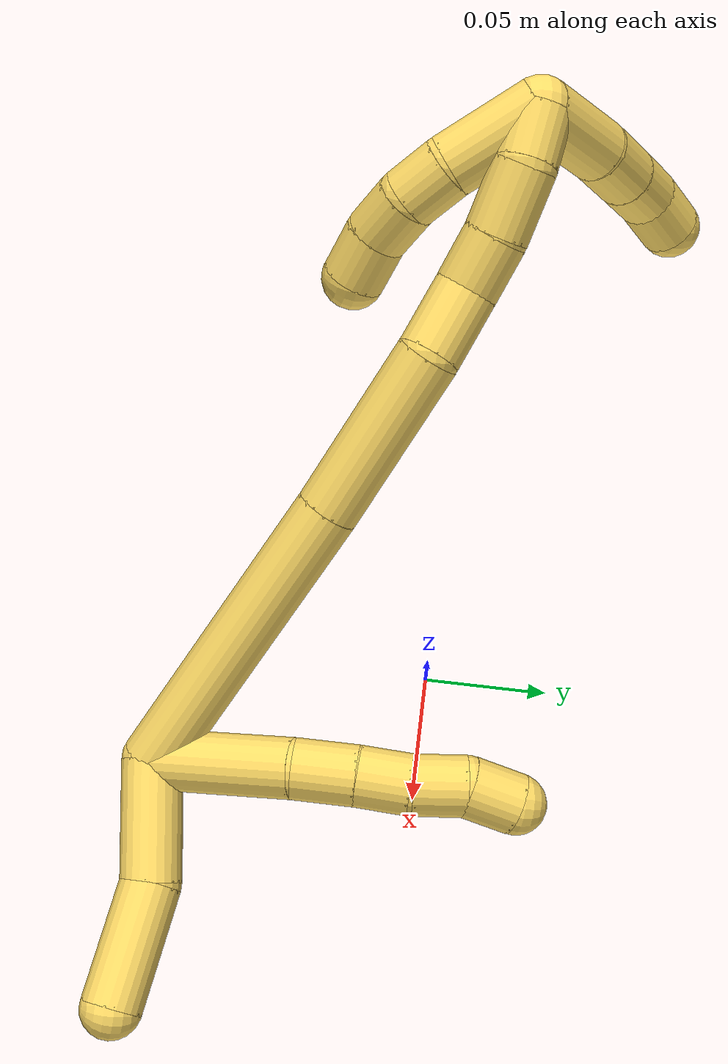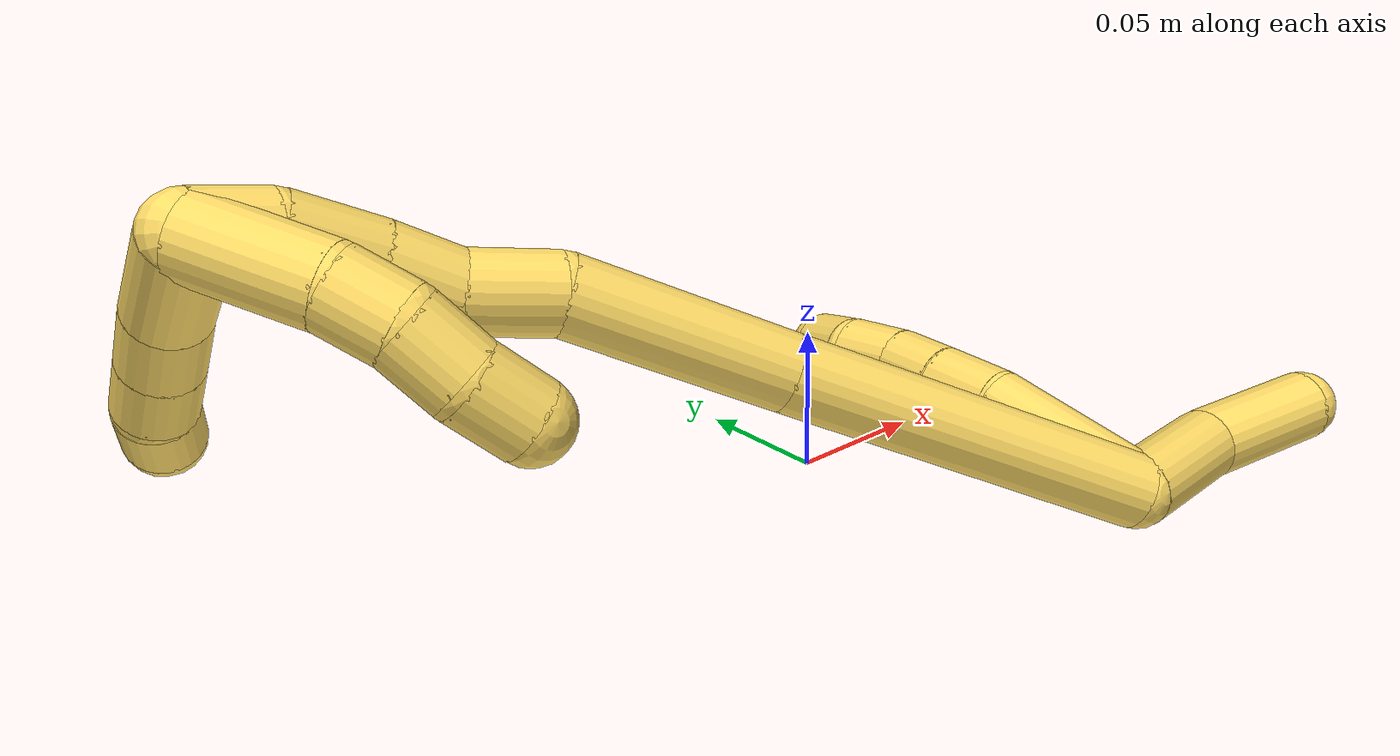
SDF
<sdf version="1.7">
 <world name="default">
  <model name="5">
   <static>0</static>
   <link name="5">
    <collision name="collision-cylinder-e_1_2_8">
     <pose>-0.002439 -0.013313 0.026356 0.467722 -0.082414 -0.019643</pose>
     <geometry><cylinder><radius>0.0125</radius><length>0.059257</length></cylinder></geometry>
     <surface>
      <friction><ode><mu>1.16</mu><mu2>1.16</mu2><slip1>0</slip1><slip2>0</slip2></ode></friction>
      <contact><ode><kp>1e+06</kp><kd>1</kd><max_vel>0</max_vel><min_depth>0.001</min_depth></ode></contact>
     </surface>
    </collision>
    <visual name="visual-cylinder-e_1_2_8">
     <pose>-0.002439 -0.013313 0.026356 0.467722 -0.082414 -0.019643</pose>
     <geometry><cylinder><radius>0.0125</radius><length>0.059257</length></cylinder></geometry>
     <material><ambient>1 0.858824 0.4 1</ambient></material>
    </visual>
    <collision name="collision-cylinder-e_2_8_9">
     <pose>-0.00509 -0.030518 0.064911 0.308893 -0.016516 -0.002571</pose>
     <geometry><cylinder><radius>0.0125</radius><length>0.025612</length></cylinder></geometry>
     <surface>
      <friction><ode><mu>1.16</mu><mu2>1.16</mu2><slip1>0</slip1><slip2>0</slip2></ode></friction>
      <contact><ode><kp>1e+06</kp><kd>1</kd><max_vel>0</max_vel><min_depth>0.001</min_depth></ode></contact>
     </surface>
    </collision>
    <visual name="visual-cylinder-e_2_8_9">
     <pose>-0.00509 -0.030518 0.064911 0.308893 -0.016516 -0.002571</pose>
     <geometry><cylinder><radius>0.0125</radius><length>0.025612</length></cylinder></geometry>
     <material><ambient>1 0.858824 0.4 1</ambient></material>
    </visual>
    <collision name="collision-cylinder-e_3_9_10">
     <pose>-0.004912 -0.037401 0.087483 0.280708 0.036031 0.005091</pose>
     <geometry><cylinder><radius>0.0125</radius><length>0.021606</length></cylinder></geometry>
     <surface>
      <friction><ode><mu>1.16</mu><mu2>1.16</mu2><slip1>0</slip1><slip2>0</slip2></ode></friction>
      <contact><ode><kp>1e+06</kp><kd>1</kd><max_vel>0</max_vel><min_depth>0.001</min_depth></ode></contact>
     </surface>
    </collision>
    <visual name="visual-cylinder-e_3_9_10">
     <pose>-0.004912 -0.037401 0.087483 0.280708 0.036031 0.005091</pose>
     <geometry><cylinder><radius>0.0125</radius><length>0.021606</length></cylinder></geometry>
     <material><ambient>1 0.858824 0.4 1</ambient></material>
    </visual>
    <collision name="collision-cylinder-e_4_10_11">
     <pose>-0.005549 -0.042527 0.108644 0.195359 -0.093092 -0.009129</pose>
     <geometry><cylinder><radius>0.0125</radius><length>0.022089</length></cylinder></geometry>
     <surface>
      <friction><ode><mu>1.16</mu><mu2>1.16</mu2><slip1>0</slip1><slip2>0</slip2></ode></friction>
      <contact><ode><kp>1e+06</kp><kd>1</kd><max_vel>0</max_vel><min_depth>0.001</min_depth></ode></contact>
     </surface>
    </collision>
    <visual name="visual-cylinder-e_4_10_11">
     <pose>-0.005549 -0.042527 0.108644 0.195359 -0.093092 -0.009129</pose>
     <geometry><cylinder><radius>0.0125</radius><length>0.022089</length></cylinder></geometry>
     <material><ambient>1 0.858824 0.4 1</ambient></material>
    </visual>
    <collision name="collision-cylinder-e_5_11_6">
     <pose>-0.004049 -0.045564 0.129808 0.086724 0.238019 0.010376</pose>
     <geometry><cylinder><radius>0.0125</radius><length>0.021436</length></cylinder></geometry>
     <surface>
      <friction><ode><mu>1.16</mu><mu2>1.16</mu2><slip1>0</slip1><slip2>0</slip2></ode></friction>
      <contact><ode><kp>1e+06</kp><kd>1</kd><max_vel>0</max_vel><min_depth>0.001</min_depth></ode></contact>
     </surface>
    </collision>
    <visual name="visual-cylinder-e_5_11_6">
     <pose>-0.004049 -0.045564 0.129808 0.086724 0.238019 0.010376</pose>
     <geometry><cylinder><radius>0.0125</radius><length>0.021436</length></cylinder></geometry>
     <material><ambient>1 0.858824 0.4 1</ambient></material>
    </visual>
    <collision name="collision-cylinder-e_1_2_12">
     <pose>0.024087 -0.005313 0.002054 1.20195 1.33857 0.993901</pose>
     <geometry><cylinder><radius>0.0125</radius><length>0.049504</length></cylinder></geometry>
     <surface>
      <friction><ode><mu>1.16</mu><mu2>1.16</mu2><slip1>0</slip1><slip2>0</slip2></ode></friction>
      <contact><ode><kp>1e+06</kp><kd>1</kd><max_vel>0</max_vel><min_depth>0.001</min_depth></ode></contact>
     </surface>
    </collision>
    <visual name="visual-cylinder-e_1_2_12">
     <pose>0.024087 -0.005313 0.002054 1.20195 1.33857 0.993901</pose>
     <geometry><cylinder><radius>0.0125</radius><length>0.049504</length></cylinder></geometry>
     <material><ambient>1 0.858824 0.4 1</ambient></material>
    </visual>
    <collision name="collision-cylinder-e_2_12_5">
     <pose>0.072265 -0.01588 -0.001328 2.37325 1.26671 2.13504</pose>
     <geometry><cylinder><radius>0.0125</radius><length>0.050496</length></cylinder></geometry>
     <surface>
      <friction><ode><mu>1.16</mu><mu2>1.16</mu2><slip1>0</slip1><slip2>0</slip2></ode></friction>
      <contact><ode><kp>1e+06</kp><kd>1</kd><max_vel>0</max_vel><min_depth>0.001</min_depth></ode></contact>
     </surface>
    </collision>
    <visual name="visual-cylinder-e_2_12_5">
     <pose>0.072265 -0.01588 -0.001328 2.37325 1.26671 2.13504</pose>
     <geometry><cylinder><radius>0.0125</radius><length>0.050496</length></cylinder></geometry>
     <material><ambient>1 0.858824 0.4 1</ambient></material>
    </visual>
    <collision name="collision-cylinder-e_1_2_13">
     <pose>-0.054091 -0.021966 0.024865 0.723559 -1.0206 -0.41749</pose>
     <geometry><cylinder><radius>0.0125</radius><length>0.12691</length></cylinder></geometry>
     <surface>
      <friction><ode><mu>1.16</mu><mu2>1.16</mu2><slip1>0</slip1><slip2>0</slip2></ode></friction>
      <contact><ode><kp>1e+06</kp><kd>1</kd><max_vel>0</max_vel><min_depth>0.001</min_depth></ode></contact>
     </surface>
    </collision>
    <visual name="visual-cylinder-e_1_2_13">
     <pose>-0.054091 -0.021966 0.024865 0.723559 -1.0206 -0.41749</pose>
     <geometry><cylinder><radius>0.0125</radius><length>0.12691</length></cylinder></geometry>
     <material><ambient>1 0.858824 0.4 1</ambient></material>
    </visual>
    <collision name="collision-cylinder-e_2_13_14">
     <pose>-0.139214 -0.0565 0.062649 0.771685 -1.04461 -0.459391</pose>
     <geometry><cylinder><radius>0.0125</radius><length>0.071775</length></cylinder></geometry>
     <surface>
      <friction><ode><mu>1.16</mu><mu2>1.16</mu2><slip1>0</slip1><slip2>0</slip2></ode></friction>
      <contact><ode><kp>1e+06</kp><kd>1</kd><max_vel>0</max_vel><min_depth>0.001</min_depth></ode></contact>
     </surface>
    </collision>
    <visual name="visual-cylinder-e_2_13_14">
     <pose>-0.139214 -0.0565 0.062649 0.771685 -1.04461 -0.459391</pose>
     <geometry><cylinder><radius>0.0125</radius><length>0.071775</length></cylinder></geometry>
     <material><ambient>1 0.858824 0.4 1</ambient></material>
    </visual>
    <collision name="collision-cylinder-e_3_14_15">
     <pose>-0.183556 -0.069636 0.081095 0.102276 -1.17531 -0.068166</pose>
     <geometry><cylinder><radius>0.0125</radius><length>0.028845</length></cylinder></geometry>
     <surface>
      <friction><ode><mu>1.16</mu><mu2>1.16</mu2><slip1>0</slip1><slip2>0</slip2></ode></friction>
      <contact><ode><kp>1e+06</kp><kd>1</kd><max_vel>0</max_vel><min_depth>0.001</min_depth></ode></contact>
     </surface>
    </collision>
    <visual name="visual-cylinder-e_3_14_15">
     <pose>-0.183556 -0.069636 0.081095 0.102276 -1.17531 -0.068166</pose>
     <geometry><cylinder><radius>0.0125</radius><length>0.028845</length></cylinder></geometry>
     <material><ambient>1 0.858824 0.4 1</ambient></material>
    </visual>
    <collision name="collision-cylinder-e_4_15_16">
     <pose>-0.206996 -0.074392 0.089891 0.908056 -1.08771 -0.57392</pose>
     <geometry><cylinder><radius>0.0125</radius><length>0.022878</length></cylinder></geometry>
     <surface>
      <friction><ode><mu>1.16</mu><mu2>1.16</mu2><slip1>0</slip1><slip2>0</slip2></ode></friction>
      <contact><ode><kp>1e+06</kp><kd>1</kd><max_vel>0</max_vel><min_depth>0.001</min_depth></ode></contact>
     </surface>
    </collision>
    <visual name="visual-cylinder-e_4_15_16">
     <pose>-0.206996 -0.074392 0.089891 0.908056 -1.08771 -0.57392</pose>
     <geometry><cylinder><radius>0.0125</radius><length>0.022878</length></cylinder></geometry>
     <material><ambient>1 0.858824 0.4 1</ambient></material>
    </visual>
    <collision name="collision-cylinder-e_5_16_17">
     <pose>-0.230145 -0.082561 0.095805 0.984307 -1.21908 -0.716424</pose>
     <geometry><cylinder><radius>0.0125</radius><length>0.027737</length></cylinder></geometry>
     <surface>
      <friction><ode><mu>1.16</mu><mu2>1.16</mu2><slip1>0</slip1><slip2>0</slip2></ode></friction>
      <contact><ode><kp>1e+06</kp><kd>1</kd><max_vel>0</max_vel><min_depth>0.001</min_depth></ode></contact>
     </surface>
    </collision>
    <visual name="visual-cylinder-e_5_16_17">
     <pose>-0.230145 -0.082561 0.095805 0.984307 -1.21908 -0.716424</pose>
     <geometry><cylinder><radius>0.0125</radius><length>0.027737</length></cylinder></geometry>
     <material><ambient>1 0.858824 0.4 1</ambient></material>
    </visual>
    <collision name="collision-cylinder-e_6_17_1">
     <pose>-0.253955 -0.086311 0.100162 -0.132914 -1.41201 0.113369</pose>
     <geometry><cylinder><radius>0.0125</radius><length>0.021854</length></cylinder></geometry>
     <surface>
      <friction><ode><mu>1.16</mu><mu2>1.16</mu2><slip1>0</slip1><slip2>0</slip2></ode></friction>
      <contact><ode><kp>1e+06</kp><kd>1</kd><max_vel>0</max_vel><min_depth>0.001</min_depth></ode></contact>
     </surface>
    </collision>
    <visual name="visual-cylinder-e_6_17_1">
     <pose>-0.253955 -0.086311 0.100162 -0.132914 -1.41201 0.113369</pose>
     <geometry><cylinder><radius>0.0125</radius><length>0.021854</length></cylinder></geometry>
     <material><ambient>1 0.858824 0.4 1</ambient></material>
    </visual>
    <collision name="collision-cylinder-e_1_1_18">
     <pose>-0.261595 -0.076596 0.117334 -0.550354 0.171924 -0.048651</pose>
     <geometry><cylinder><radius>0.0125</radius><length>0.036819</length></cylinder></geometry>
     <surface>
      <friction><ode><mu>1.16</mu><mu2>1.16</mu2><slip1>0</slip1><slip2>0</slip2></ode></friction>
      <contact><ode><kp>1e+06</kp><kd>1</kd><max_vel>0</max_vel><min_depth>0.001</min_depth></ode></contact>
     </surface>
    </collision>
    <visual name="visual-cylinder-e_1_1_18">
     <pose>-0.261595 -0.076596 0.117334 -0.550354 0.171924 -0.048651</pose>
     <geometry><cylinder><radius>0.0125</radius><length>0.036819</length></cylinder></geometry>
     <material><ambient>1 0.858824 0.4 1</ambient></material>
    </visual>
    <collision name="collision-cylinder-e_2_18_19">
     <pose>-0.25641 -0.060092 0.141413 -0.683366 0.181153 -0.064578</pose>
     <geometry><cylinder><radius>0.0125</radius><length>0.0226</length></cylinder></geometry>
     <surface>
      <friction><ode><mu>1.16</mu><mu2>1.16</mu2><slip1>0</slip1><slip2>0</slip2></ode></friction>
      <contact><ode><kp>1e+06</kp><kd>1</kd><max_vel>0</max_vel><min_depth>0.001</min_depth></ode></contact>
     </surface>
    </collision>
    <visual name="visual-cylinder-e_2_18_19">
     <pose>-0.25641 -0.060092 0.141413 -0.683366 0.181153 -0.064578</pose>
     <geometry><cylinder><radius>0.0125</radius><length>0.0226</length></cylinder></geometry>
     <material><ambient>1 0.858824 0.4 1</ambient></material>
    </visual>
    <collision name="collision-cylinder-e_3_19_20">
     <pose>-0.252651 -0.046507 0.157661 -0.710757 0.169544 -0.063054</pose>
     <geometry><cylinder><radius>0.0125</radius><length>0.020424</length></cylinder></geometry>
     <surface>
      <friction><ode><mu>1.16</mu><mu2>1.16</mu2><slip1>0</slip1><slip2>0</slip2></ode></friction>
      <contact><ode><kp>1e+06</kp><kd>1</kd><max_vel>0</max_vel><min_depth>0.001</min_depth></ode></contact>
     </surface>
    </collision>
    <visual name="visual-cylinder-e_3_19_20">
     <pose>-0.252651 -0.046507 0.157661 -0.710757 0.169544 -0.063054</pose>
     <geometry><cylinder><radius>0.0125</radius><length>0.020424</length></cylinder></geometry>
     <material><ambient>1 0.858824 0.4 1</ambient></material>
    </visual>
    <collision name="collision-cylinder-e_4_20_4">
     <pose>-0.246876 -0.034911 0.173026 -0.576404 0.413682 -0.124258</pose>
     <geometry><cylinder><radius>0.0125</radius><length>0.020157</length></cylinder></geometry>
     <surface>
      <friction><ode><mu>1.16</mu><mu2>1.16</mu2><slip1>0</slip1><slip2>0</slip2></ode></friction>
      <contact><ode><kp>1e+06</kp><kd>1</kd><max_vel>0</max_vel><min_depth>0.001</min_depth></ode></contact>
     </surface>
    </collision>
    <visual name="visual-cylinder-e_4_20_4">
     <pose>-0.246876 -0.034911 0.173026 -0.576404 0.413682 -0.124258</pose>
     <geometry><cylinder><radius>0.0125</radius><length>0.020157</length></cylinder></geometry>
     <material><ambient>1 0.858824 0.4 1</ambient></material>
    </visual>
    <collision name="collision-cylinder-e_1_1_21">
     <pose>-0.252778 -0.079101 0.087702 -2.68389 0.648233 -1.92914</pose>
     <geometry><cylinder><radius>0.0125</radius><length>0.039638</length></cylinder></geometry>
     <surface>
      <friction><ode><mu>1.16</mu><mu2>1.16</mu2><slip1>0</slip1><slip2>0</slip2></ode></friction>
      <contact><ode><kp>1e+06</kp><kd>1</kd><max_vel>0</max_vel><min_depth>0.001</min_depth></ode></contact>
     </surface>
    </collision>
    <visual name="visual-cylinder-e_1_1_21">
     <pose>-0.252778 -0.079101 0.087702 -2.68389 0.648233 -1.92914</pose>
     <geometry><cylinder><radius>0.0125</radius><length>0.039638</length></cylinder></geometry>
     <material><ambient>1 0.858824 0.4 1</ambient></material>
    </visual>
    <collision name="collision-cylinder-e_2_21_22">
     <pose>-0.23452 -0.06703 0.067652 -2.42785 0.680307 -1.51873</pose>
     <geometry><cylinder><radius>0.0125</radius><length>0.020002</length></cylinder></geometry>
     <surface>
      <friction><ode><mu>1.16</mu><mu2>1.16</mu2><slip1>0</slip1><slip2>0</slip2></ode></friction>
      <contact><ode><kp>1e+06</kp><kd>1</kd><max_vel>0</max_vel><min_depth>0.001</min_depth></ode></contact>
     </surface>
    </collision>
    <visual name="visual-cylinder-e_2_21_22">
     <pose>-0.23452 -0.06703 0.067652 -2.42785 0.680307 -1.51873</pose>
     <geometry><cylinder><radius>0.0125</radius><length>0.020002</length></cylinder></geometry>
     <material><ambient>1 0.858824 0.4 1</ambient></material>
    </visual>
    <collision name="collision-cylinder-e_3_22_23">
     <pose>-0.221831 -0.055022 0.058161 -2.05218 0.686669 -1.06617</pose>
     <geometry><cylinder><radius>0.0125</radius><length>0.020186</length></cylinder></geometry>
     <surface>
      <friction><ode><mu>1.16</mu><mu2>1.16</mu2><slip1>0</slip1><slip2>0</slip2></ode></friction>
      <contact><ode><kp>1e+06</kp><kd>1</kd><max_vel>0</max_vel><min_depth>0.001</min_depth></ode></contact>
     </surface>
    </collision>
    <visual name="visual-cylinder-e_3_22_23">
     <pose>-0.221831 -0.055022 0.058161 -2.05218 0.686669 -1.06617</pose>
     <geometry><cylinder><radius>0.0125</radius><length>0.020186</length></cylinder></geometry>
     <material><ambient>1 0.858824 0.4 1</ambient></material>
    </visual>
    <collision name="collision-cylinder-e_4_23_3">
     <pose>-0.207485 -0.042339 0.052232 -1.95281 0.907358 -1.24986</pose>
     <geometry><cylinder><radius>0.0125</radius><length>0.020174</length></cylinder></geometry>
     <surface>
      <friction><ode><mu>1.16</mu><mu2>1.16</mu2><slip1>0</slip1><slip2>0</slip2></ode></friction>
      <contact><ode><kp>1e+06</kp><kd>1</kd><max_vel>0</max_vel><min_depth>0.001</min_depth></ode></contact>
     </surface>
    </collision>
    <visual name="visual-cylinder-e_4_23_3">
     <pose>-0.207485 -0.042339 0.052232 -1.95281 0.907358 -1.24986</pose>
     <geometry><cylinder><radius>0.0125</radius><length>0.020174</length></cylinder></geometry>
     <material><ambient>1 0.858824 0.4 1</ambient></material>
    </visual>
    <collision name="collision-sphere-3">
     <pose>-0.199538 -0.036575 0.049916 0 -0 0</pose>
     <geometry><sphere><radius>0.0125</radius></sphere></geometry>
     <surface>
      <friction><ode><mu>1.16</mu><mu2>1.16</mu2><slip1>0</slip1><slip2>0</slip2></ode></friction>
      <contact><ode><kp>1e+06</kp><kd>1</kd><max_vel>0</max_vel><min_depth>0.001</min_depth></ode></contact>
     </surface>
    </collision>
    <visual name="visual-sphere-3">
     <pose>-0.199538 -0.036575 0.049916 0 -0 0</pose>
     <geometry><sphere><radius>0.0125</radius></sphere></geometry>
     <material><ambient>1 0.858824 0.4 1</ambient></material>
    </visual>
    <collision name="collision-sphere-23">
     <pose>-0.215433 -0.048103 0.054547 0 -0 0</pose>
     <geometry><sphere><radius>0.0125</radius></sphere></geometry>
     <surface>
      <friction><ode><mu>1.16</mu><mu2>1.16</mu2><slip1>0</slip1><slip2>0</slip2></ode></friction>
      <contact><ode><kp>1e+06</kp><kd>1</kd><max_vel>0</max_vel><min_depth>0.001</min_depth></ode></contact>
     </surface>
    </collision>
    <visual name="visual-sphere-23">
     <pose>-0.215433 -0.048103 0.054547 0 -0 0</pose>
     <geometry><sphere><radius>0.0125</radius></sphere></geometry>
     <material><ambient>1 0.858824 0.4 1</ambient></material>
    </visual>
    <collision name="collision-sphere-22">
     <pose>-0.22823 -0.06194 0.061775 0 -0 0</pose>
     <geometry><sphere><radius>0.0125</radius></sphere></geometry>
     <surface>
      <friction><ode><mu>1.16</mu><mu2>1.16</mu2><slip1>0</slip1><slip2>0</slip2></ode></friction>
      <contact><ode><kp>1e+06</kp><kd>1</kd><max_vel>0</max_vel><min_depth>0.001</min_depth></ode></contact>
     </surface>
    </collision>
    <visual name="visual-sphere-22">
     <pose>-0.22823 -0.06194 0.061775 0 -0 0</pose>
     <geometry><sphere><radius>0.0125</radius></sphere></geometry>
     <material><ambient>1 0.858824 0.4 1</ambient></material>
    </visual>
    <collision name="collision-sphere-21">
     <pose>-0.240811 -0.07212 0.073529 0 -0 0</pose>
     <geometry><sphere><radius>0.0125</radius></sphere></geometry>
     <surface>
      <friction><ode><mu>1.16</mu><mu2>1.16</mu2><slip1>0</slip1><slip2>0</slip2></ode></friction>
      <contact><ode><kp>1e+06</kp><kd>1</kd><max_vel>0</max_vel><min_depth>0.001</min_depth></ode></contact>
     </surface>
    </collision>
    <visual name="visual-sphere-21">
     <pose>-0.240811 -0.07212 0.073529 0 -0 0</pose>
     <geometry><sphere><radius>0.0125</radius></sphere></geometry>
     <material><ambient>1 0.858824 0.4 1</ambient></material>
    </visual>
    <collision name="collision-sphere-4">
     <pose>-0.242825 -0.029881 0.180764 0 -0 0</pose>
     <geometry><sphere><radius>0.0125</radius></sphere></geometry>
     <surface>
      <friction><ode><mu>1.16</mu><mu2>1.16</mu2><slip1>0</slip1><slip2>0</slip2></ode></friction>
      <contact><ode><kp>1e+06</kp><kd>1</kd><max_vel>0</max_vel><min_depth>0.001</min_depth></ode></contact>
     </surface>
    </collision>
    <visual name="visual-sphere-4">
     <pose>-0.242825 -0.029881 0.180764 0 -0 0</pose>
     <geometry><sphere><radius>0.0125</radius></sphere></geometry>
     <material><ambient>1 0.858824 0.4 1</ambient></material>
    </visual>
    <collision name="collision-sphere-20">
     <pose>-0.250927 -0.03994 0.165289 0 -0 0</pose>
     <geometry><sphere><radius>0.0125</radius></sphere></geometry>
     <surface>
      <friction><ode><mu>1.16</mu><mu2>1.16</mu2><slip1>0</slip1><slip2>0</slip2></ode></friction>
      <contact><ode><kp>1e+06</kp><kd>1</kd><max_vel>0</max_vel><min_depth>0.001</min_depth></ode></contact>
     </surface>
    </collision>
    <visual name="visual-sphere-20">
     <pose>-0.250927 -0.03994 0.165289 0 -0 0</pose>
     <geometry><sphere><radius>0.0125</radius></sphere></geometry>
     <material><ambient>1 0.858824 0.4 1</ambient></material>
    </visual>
    <collision name="collision-sphere-6">
     <pose>-0.001522 -0.046466 0.140185 0 -0 0</pose>
     <geometry><sphere><radius>0.0125</radius></sphere></geometry>
     <surface>
      <friction><ode><mu>1.16</mu><mu2>1.16</mu2><slip1>0</slip1><slip2>0</slip2></ode></friction>
      <contact><ode><kp>1e+06</kp><kd>1</kd><max_vel>0</max_vel><min_depth>0.001</min_depth></ode></contact>
     </surface>
    </collision>
    <visual name="visual-sphere-6">
     <pose>-0.001522 -0.046466 0.140185 0 -0 0</pose>
     <geometry><sphere><radius>0.0125</radius></sphere></geometry>
     <material><ambient>1 0.858824 0.4 1</ambient></material>
    </visual>
    <collision name="collision-sphere-11">
     <pose>-0.006576 -0.044662 0.119431 0 -0 0</pose>
     <geometry><sphere><radius>0.0125</radius></sphere></geometry>
     <surface>
      <friction><ode><mu>1.16</mu><mu2>1.16</mu2><slip1>0</slip1><slip2>0</slip2></ode></friction>
      <contact><ode><kp>1e+06</kp><kd>1</kd><max_vel>0</max_vel><min_depth>0.001</min_depth></ode></contact>
     </surface>
    </collision>
    <visual name="visual-sphere-11">
     <pose>-0.006576 -0.044662 0.119431 0 -0 0</pose>
     <geometry><sphere><radius>0.0125</radius></sphere></geometry>
     <material><ambient>1 0.858824 0.4 1</ambient></material>
    </visual>
    <collision name="collision-sphere-10">
     <pose>-0.004523 -0.040392 0.097856 0 -0 0</pose>
     <geometry><sphere><radius>0.0125</radius></sphere></geometry>
     <surface>
      <friction><ode><mu>1.16</mu><mu2>1.16</mu2><slip1>0</slip1><slip2>0</slip2></ode></friction>
      <contact><ode><kp>1e+06</kp><kd>1</kd><max_vel>0</max_vel><min_depth>0.001</min_depth></ode></contact>
     </surface>
    </collision>
    <visual name="visual-sphere-10">
     <pose>-0.004523 -0.040392 0.097856 0 -0 0</pose>
     <geometry><sphere><radius>0.0125</radius></sphere></geometry>
     <material><ambient>1 0.858824 0.4 1</ambient></material>
    </visual>
    <collision name="collision-sphere-9">
     <pose>-0.005301 -0.03441 0.077109 0 -0 0</pose>
     <geometry><sphere><radius>0.0125</radius></sphere></geometry>
     <surface>
      <friction><ode><mu>1.16</mu><mu2>1.16</mu2><slip1>0</slip1><slip2>0</slip2></ode></friction>
      <contact><ode><kp>1e+06</kp><kd>1</kd><max_vel>0</max_vel><min_depth>0.001</min_depth></ode></contact>
     </surface>
    </collision>
    <visual name="visual-sphere-9">
     <pose>-0.005301 -0.03441 0.077109 0 -0 0</pose>
     <geometry><sphere><radius>0.0125</radius></sphere></geometry>
     <material><ambient>1 0.858824 0.4 1</ambient></material>
    </visual>
    <collision name="collision-sphere-2">
     <geometry><sphere><radius>0.0125</radius></sphere></geometry>
     <surface>
      <friction><ode><mu>1.16</mu><mu2>1.16</mu2><slip1>0</slip1><slip2>0</slip2></ode></friction>
      <contact><ode><kp>1e+06</kp><kd>1</kd><max_vel>0</max_vel><min_depth>0.001</min_depth></ode></contact>
     </surface>
    </collision>
    <visual name="visual-sphere-2">
     <geometry><sphere><radius>0.0125</radius></sphere></geometry>
     <material><ambient>1 0.858824 0.4 1</ambient></material>
    </visual>
    <collision name="collision-sphere-19">
     <pose>-0.254374 -0.053074 0.150032 0 -0 0</pose>
     <geometry><sphere><radius>0.0125</radius></sphere></geometry>
     <surface>
      <friction><ode><mu>1.16</mu><mu2>1.16</mu2><slip1>0</slip1><slip2>0</slip2></ode></friction>
      <contact><ode><kp>1e+06</kp><kd>1</kd><max_vel>0</max_vel><min_depth>0.001</min_depth></ode></contact>
     </surface>
    </collision>
    <visual name="visual-sphere-19">
     <pose>-0.254374 -0.053074 0.150032 0 -0 0</pose>
     <geometry><sphere><radius>0.0125</radius></sphere></geometry>
     <material><ambient>1 0.858824 0.4 1</ambient></material>
    </visual>
    <collision name="collision-sphere-8">
     <pose>-0.004878 -0.026625 0.052713 0 -0 0</pose>
     <geometry><sphere><radius>0.0125</radius></sphere></geometry>
     <surface>
      <friction><ode><mu>1.16</mu><mu2>1.16</mu2><slip1>0</slip1><slip2>0</slip2></ode></friction>
      <contact><ode><kp>1e+06</kp><kd>1</kd><max_vel>0</max_vel><min_depth>0.001</min_depth></ode></contact>
     </surface>
    </collision>
    <visual name="visual-sphere-8">
     <pose>-0.004878 -0.026625 0.052713 0 -0 0</pose>
     <geometry><sphere><radius>0.0125</radius></sphere></geometry>
     <material><ambient>1 0.858824 0.4 1</ambient></material>
    </visual>
    <collision name="collision-sphere-12">
     <pose>0.048175 -0.010627 0.004108 0 -0 0</pose>
     <geometry><sphere><radius>0.0125</radius></sphere></geometry>
     <surface>
      <friction><ode><mu>1.16</mu><mu2>1.16</mu2><slip1>0</slip1><slip2>0</slip2></ode></friction>
      <contact><ode><kp>1e+06</kp><kd>1</kd><max_vel>0</max_vel><min_depth>0.001</min_depth></ode></contact>
     </surface>
    </collision>
    <visual name="visual-sphere-12">
     <pose>0.048175 -0.010627 0.004108 0 -0 0</pose>
     <geometry><sphere><radius>0.0125</radius></sphere></geometry>
     <material><ambient>1 0.858824 0.4 1</ambient></material>
    </visual>
    <collision name="collision-sphere-5">
     <pose>0.096354 -0.021134 -0.006764 0 -0 0</pose>
     <geometry><sphere><radius>0.0125</radius></sphere></geometry>
     <surface>
      <friction><ode><mu>1.16</mu><mu2>1.16</mu2><slip1>0</slip1><slip2>0</slip2></ode></friction>
      <contact><ode><kp>1e+06</kp><kd>1</kd><max_vel>0</max_vel><min_depth>0.001</min_depth></ode></contact>
     </surface>
    </collision>
    <visual name="visual-sphere-5">
     <pose>0.096354 -0.021134 -0.006764 0 -0 0</pose>
     <geometry><sphere><radius>0.0125</radius></sphere></geometry>
     <material><ambient>1 0.858824 0.4 1</ambient></material>
    </visual>
    <collision name="collision-sphere-13">
     <pose>-0.108181 -0.043931 0.04973 0 -0 0</pose>
     <geometry><sphere><radius>0.0125</radius></sphere></geometry>
     <surface>
      <friction><ode><mu>1.16</mu><mu2>1.16</mu2><slip1>0</slip1><slip2>0</slip2></ode></friction>
      <contact><ode><kp>1e+06</kp><kd>1</kd><max_vel>0</max_vel><min_depth>0.001</min_depth></ode></contact>
     </surface>
    </collision>
    <visual name="visual-sphere-13">
     <pose>-0.108181 -0.043931 0.04973 0 -0 0</pose>
     <geometry><sphere><radius>0.0125</radius></sphere></geometry>
     <material><ambient>1 0.858824 0.4 1</ambient></material>
    </visual>
    <collision name="collision-sphere-14">
     <pose>-0.170247 -0.069069 0.075568 0 -0 0</pose>
     <geometry><sphere><radius>0.0125</radius></sphere></geometry>
     <surface>
      <friction><ode><mu>1.16</mu><mu2>1.16</mu2><slip1>0</slip1><slip2>0</slip2></ode></friction>
      <contact><ode><kp>1e+06</kp><kd>1</kd><max_vel>0</max_vel><min_depth>0.001</min_depth></ode></contact>
     </surface>
    </collision>
    <visual name="visual-sphere-14">
     <pose>-0.170247 -0.069069 0.075568 0 -0 0</pose>
     <geometry><sphere><radius>0.0125</radius></sphere></geometry>
     <material><ambient>1 0.858824 0.4 1</ambient></material>
    </visual>
    <collision name="collision-sphere-15">
     <pose>-0.196865 -0.070204 0.086622 0 -0 0</pose>
     <geometry><sphere><radius>0.0125</radius></sphere></geometry>
     <surface>
      <friction><ode><mu>1.16</mu><mu2>1.16</mu2><slip1>0</slip1><slip2>0</slip2></ode></friction>
      <contact><ode><kp>1e+06</kp><kd>1</kd><max_vel>0</max_vel><min_depth>0.001</min_depth></ode></contact>
     </surface>
    </collision>
    <visual name="visual-sphere-15">
     <pose>-0.196865 -0.070204 0.086622 0 -0 0</pose>
     <geometry><sphere><radius>0.0125</radius></sphere></geometry>
     <material><ambient>1 0.858824 0.4 1</ambient></material>
    </visual>
    <collision name="collision-sphere-16">
     <pose>-0.217126 -0.078581 0.093161 0 -0 0</pose>
     <geometry><sphere><radius>0.0125</radius></sphere></geometry>
     <surface>
      <friction><ode><mu>1.16</mu><mu2>1.16</mu2><slip1>0</slip1><slip2>0</slip2></ode></friction>
      <contact><ode><kp>1e+06</kp><kd>1</kd><max_vel>0</max_vel><min_depth>0.001</min_depth></ode></contact>
     </surface>
    </collision>
    <visual name="visual-sphere-16">
     <pose>-0.217126 -0.078581 0.093161 0 -0 0</pose>
     <geometry><sphere><radius>0.0125</radius></sphere></geometry>
     <material><ambient>1 0.858824 0.4 1</ambient></material>
    </visual>
    <collision name="collision-sphere-17">
     <pose>-0.243165 -0.08654 0.098449 0 -0 0</pose>
     <geometry><sphere><radius>0.0125</radius></sphere></geometry>
     <surface>
      <friction><ode><mu>1.16</mu><mu2>1.16</mu2><slip1>0</slip1><slip2>0</slip2></ode></friction>
      <contact><ode><kp>1e+06</kp><kd>1</kd><max_vel>0</max_vel><min_depth>0.001</min_depth></ode></contact>
     </surface>
    </collision>
    <visual name="visual-sphere-17">
     <pose>-0.243165 -0.08654 0.098449 0 -0 0</pose>
     <geometry><sphere><radius>0.0125</radius></sphere></geometry>
     <material><ambient>1 0.858824 0.4 1</ambient></material>
    </visual>
    <collision name="collision-sphere-1">
     <pose>-0.264744 -0.086082 0.101874 0 -0 0</pose>
     <geometry><sphere><radius>0.0125</radius></sphere></geometry>
     <surface>
      <friction><ode><mu>1.16</mu><mu2>1.16</mu2><slip1>0</slip1><slip2>0</slip2></ode></friction>
      <contact><ode><kp>1e+06</kp><kd>1</kd><max_vel>0</max_vel><min_depth>0.001</min_depth></ode></contact>
     </surface>
    </collision>
    <visual name="visual-sphere-1">
     <pose>-0.264744 -0.086082 0.101874 0 -0 0</pose>
     <geometry><sphere><radius>0.0125</radius></sphere></geometry>
     <material><ambient>1 0.858824 0.4 1</ambient></material>
    </visual>
    <collision name="collision-sphere-18">
     <pose>-0.258445 -0.06711 0.132794 0 -0 0</pose>
     <geometry><sphere><radius>0.0125</radius></sphere></geometry>
     <surface>
      <friction><ode><mu>1.16</mu><mu2>1.16</mu2><slip1>0</slip1><slip2>0</slip2></ode></friction>
      <contact><ode><kp>1e+06</kp><kd>1</kd><max_vel>0</max_vel><min_depth>0.001</min_depth></ode></contact>
     </surface>
    </collision>
    <visual name="visual-sphere-18">
     <pose>-0.258445 -0.06711 0.132794 0 -0 0</pose>
     <geometry><sphere><radius>0.0125</radius></sphere></geometry>
     <material><ambient>1 0.858824 0.4 1</ambient></material>
    </visual>
    <inertial>
     <pose>-0.111342 -0.04315 0.064676 0 -0 0</pose>
     <mass>0.75</mass>
     <inertia><ixx>8.2e-05</ixx><ixy>0</ixy><ixz>0</ixz><iyy>0.00021</iyy><iyz>0</iyz><izz>0.000255</izz></inertia>
    </inertial>
   </link>
   <pose>0.046473 -0.106297 0.013181 -1.84956 0.221057 -0.015694</pose>
  </model>
 </world>
</sdf>
